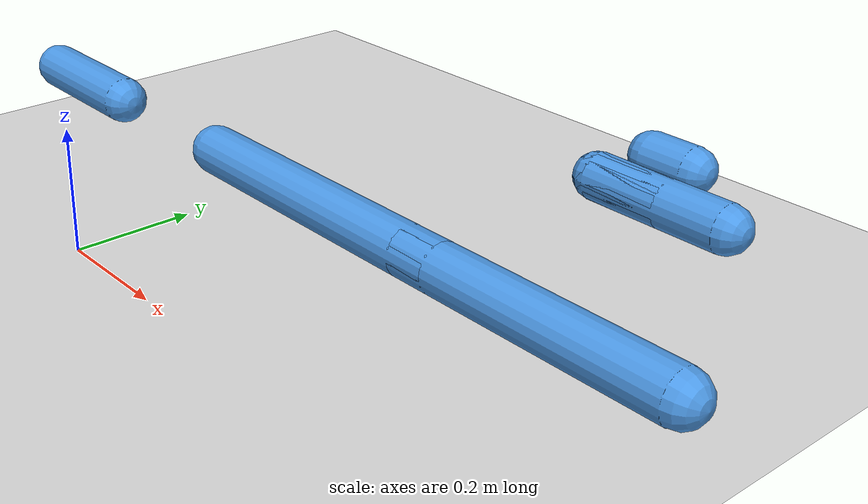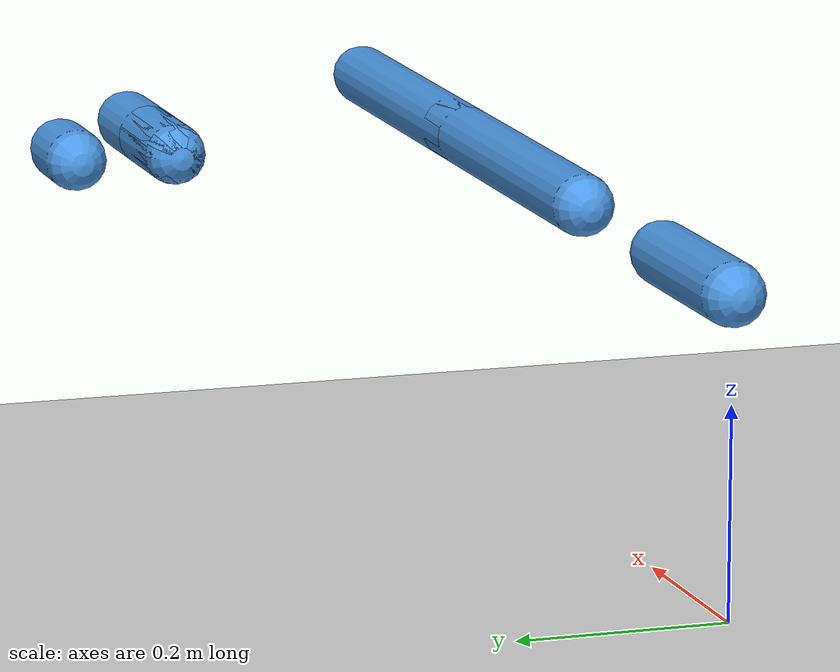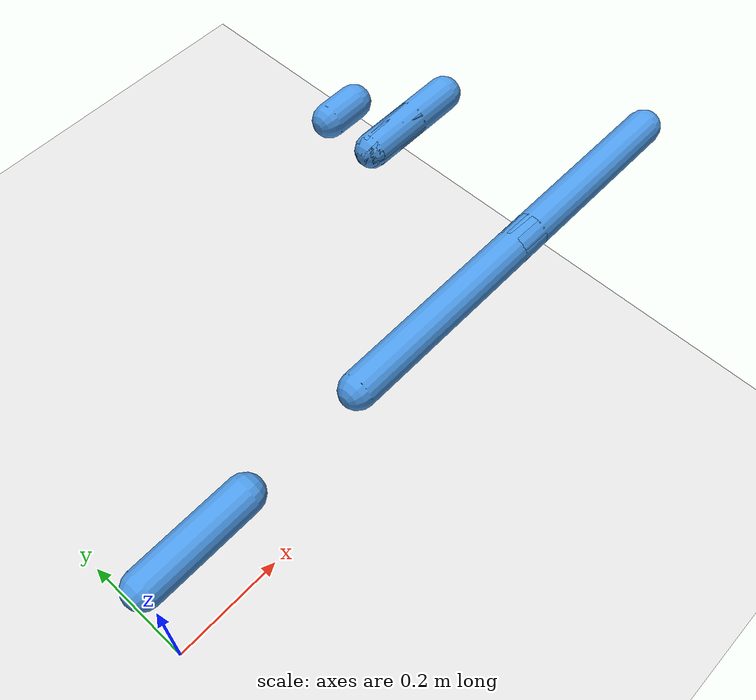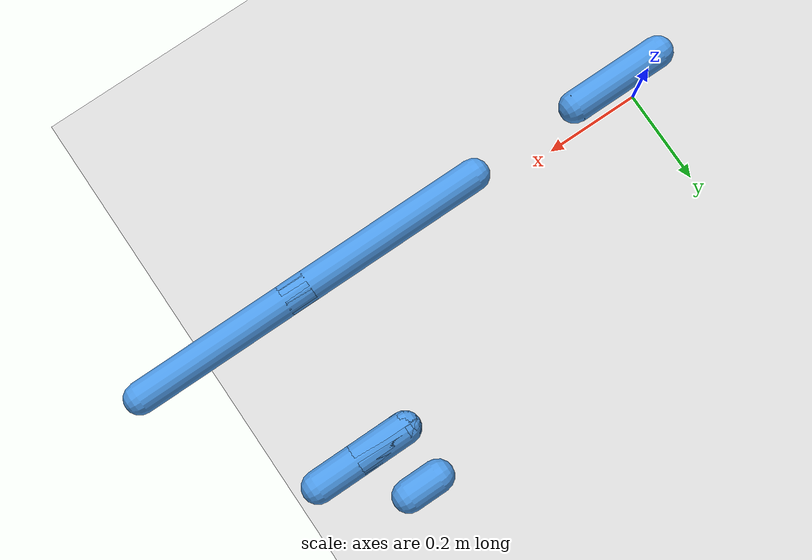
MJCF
<?xml version='1.0' encoding='us-ascii'?>
<mujoco model="articulate_arm"><compiler angle="radian" coordinate="local" /><asset><texture name="grid" type="2d" builtin="checker" width="512" height="512" rgb1="0.9 0.9 0.9" rgb2="0.8 0.8 0.8" /><material name="grid" texture="grid" texrepeat="1 1" texuniform="true" /></asset><worldbody><light pos="0 0 3" directional="true" /><geom name="ground" type="plane" size="1 1 0.01" material="grid" /><body name="link_0" pos="0 0 0.3" euler="-1.5708 0 0"><joint name="joint_0" type="hinge" axis="0 0 1" pos="0 0 0" range="-2.967 2.967" frictionloss="0.1" damping="5.0" /><geom name="link_0_geom" type="capsule" fromto="0 0 0 0.18 0 0" size="0.03" rgba="0.3 0.6 0.9 1" priority="1" /><geom name="link_0_collision" type="capsule" fromto="0 0 0 0.18 0 0" size="0.035" rgba="0 0 0 0" contype="1" conaffinity="1" priority="2" /><inertial pos="0.09 0 0" mass="4.0" fullinertia="0.0018 0.011699999999999999 0.011699999999999999 0 0 0" /><body name="link_1" pos="0.4 0 0" euler="0 0 0"><joint name="joint_1" type="hinge" axis="0 0 1" pos="0 0 0" range="-2.094 2.094" frictionloss="0.1" damping="5.0" /><geom name="link_1_geom" type="capsule" fromto="0 0 0 0.4 0 0" size="0.03" rgba="0.3 0.6 0.9 1" priority="1" /><geom name="link_1_collision" type="capsule" fromto="0 0 0 0.4 0 0" size="0.035" rgba="0 0 0 0" contype="1" conaffinity="1" priority="2" /><inertial pos="0.2 0 0" mass="8.0" fullinertia="0.0036 0.10846666666666668 0.10846666666666668 0 0 0" /><body name="link_2" pos="0.35 0 0" euler="0 0 0"><joint name="joint_2" type="hinge" axis="0 0 1" pos="0 0 0" range="-2.967 2.967" frictionloss="0.1" damping="5.0" /><geom name="link_2_geom" type="capsule" fromto="0 0 0 0.35 0 0" size="0.03" rgba="0.3 0.6 0.9 1" priority="1" /><geom name="link_2_collision" type="capsule" fromto="0 0 0 0.35 0 0" size="0.035" rgba="0 0 0 0" contype="1" conaffinity="1" priority="2" /><inertial pos="0.175 0 0" mass="5.0" fullinertia="0.00225 0.05216666666666666 0.05216666666666666 0 0 0" /><body name="link_3" pos="0 0 0.3" euler="-1.5708 0 0"><joint name="joint_3" type="hinge" axis="0 0 1" pos="0 0 0" range="-2.094 2.094" frictionloss="0.05" damping="5.0" /><geom name="link_3_geom" type="capsule" fromto="0 0 0 0.18 0 0" size="0.03" rgba="0.3 0.6 0.9 1" priority="1" /><geom name="link_3_collision" type="capsule" fromto="0 0 0 0.18 0 0" size="0.035" rgba="0 0 0 0" contype="1" conaffinity="1" priority="2" /><inertial pos="0.09 0 0" mass="2.0" fullinertia="0.0009 0.005849999999999999 0.005849999999999999 0 0 0" /><body name="link_4" pos="0 0 0" euler="1.5708 0 0"><joint name="joint_4" type="hinge" axis="0 0 1" pos="0 0 0" range="-2.967 2.967" frictionloss="0.05" damping="5.0" /><geom name="link_4_geom" type="capsule" fromto="0 0 0 0.1 0 0" size="0.03" rgba="0.3 0.6 0.9 1" priority="1" /><geom name="link_4_collision" type="capsule" fromto="0 0 0 0.1 0 0" size="0.035" rgba="0 0 0 0" contype="1" conaffinity="1" priority="2" /><inertial pos="0.05 0 0" mass="1.5" fullinertia="0.000675 0.0015875000000000004 0.0015875000000000004 0 0 0" /><body name="link_5" pos="0 0 0.1" euler="0 0 0"><joint name="joint_5" type="hinge" axis="0 0 1" pos="0 0 0" range="-2.094 2.094" frictionloss="0.02" damping="5.0" /><geom name="link_5_geom" type="capsule" fromto="0 0 0 0.06 0 0" size="0.03" rgba="0.3 0.6 0.9 1" priority="1" /><geom name="link_5_collision" type="capsule" fromto="0 0 0 0.06 0 0" size="0.035" rgba="0 0 0 0" contype="1" conaffinity="1" priority="2" /><site name="tcp" pos="0.06 0 0" size="0.005" type="sphere" rgba="1 0 0 1" /><inertial pos="0.03 0 0" mass="0.5" fullinertia="0.000225 0.0002625 0.0002625 0 0 0" /></body></body></body></body></body></body></worldbody><actuator><position name="actuator_0" joint="joint_0" kp="20" kv="0.5" forcelimited="true" forcerange="-150.0 150.0" /><position name="actuator_1" joint="joint_1" kp="20" kv="0.5" forcelimited="true" forcerange="-150.0 150.0" /><position name="actuator_2" joint="joint_2" kp="20" kv="0.5" forcelimited="true" forcerange="-100.0 100.0" /><position name="actuator_3" joint="joint_3" kp="20" kv="0.5" forcelimited="true" forcerange="-80.0 80.0" /><position name="actuator_4" joint="joint_4" kp="20" kv="0.5" forcelimited="true" forcerange="-80.0 80.0" /><position name="actuator_5" joint="joint_5" kp="20" kv="0.5" forcelimited="true" forcerange="-50.0 50.0" /></actuator><sensor><jointpos name="jpos_0" joint="joint_0" /><jointvel name="jvel_0" joint="joint_0" /><actuatorfrc name="jtorque_0" actuator="actuator_0" /><jointpos name="jpos_1" joint="joint_1" /><jointvel name="jvel_1" joint="joint_1" /><actuatorfrc name="jtorque_1" actuator="actuator_1" /><jointpos name="jpos_2" joint="joint_2" /><jointvel name="jvel_2" joint="joint_2" /><actuatorfrc name="jtorque_2" actuator="actuator_2" /><jointpos name="jpos_3" joint="joint_3" /><jointvel name="jvel_3" joint="joint_3" /><actuatorfrc name="jtorque_3" actuator="actuator_3" /><jointpos name="jpos_4" joint="joint_4" /><jointvel name="jvel_4" joint="joint_4" /><actuatorfrc name="jtorque_4" actuator="actuator_4" /><jointpos name="jpos_5" joint="joint_5" /><jointvel name="jvel_5" joint="joint_5" /><actuatorfrc name="jtorque_5" actuator="actuator_5" /></sensor><option timestep="0.001" gravity="0 0 -9.81" /><visual><quality shadowsize="4096" /><global offwidth="1280" offheight="720" /></visual></mujoco>
